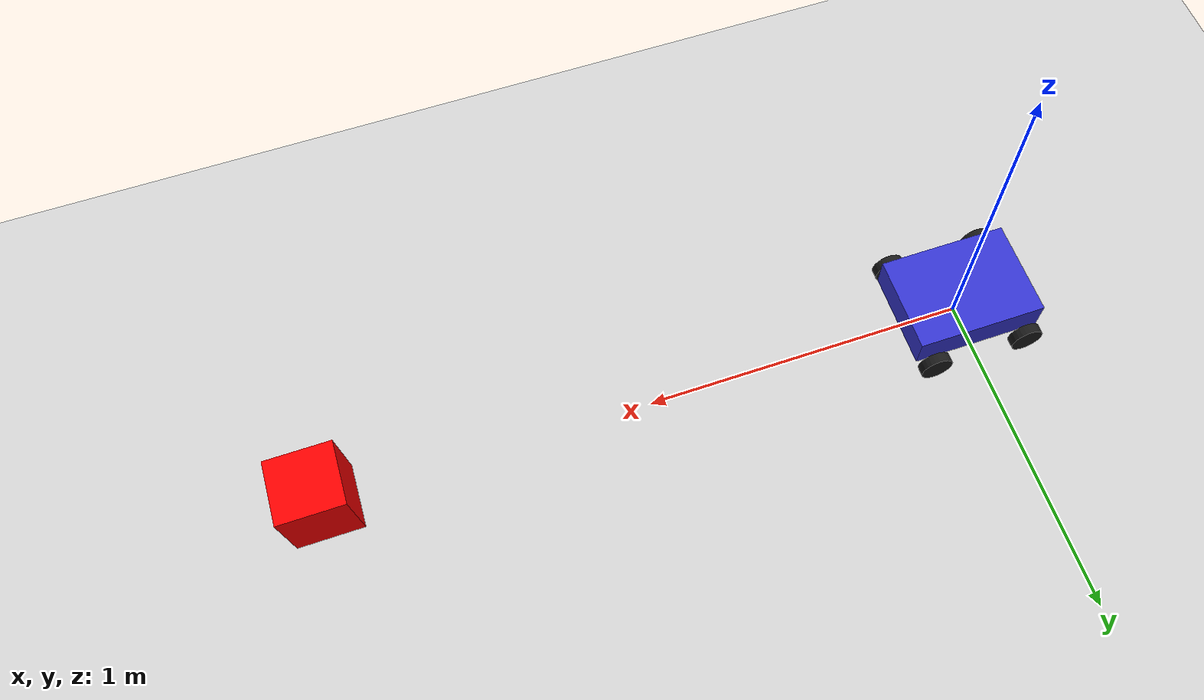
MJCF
<?xml version="1.0" ?>
<mujoco model="four_wheel_robot">
  <compiler angle="radian" coordinate="local"/>
  <default>
    <joint damping="0.1" frictionloss="0.1"/>
    <geom friction="1.0 0.1 0.1" density="1000"/>
  </default>
  <asset/>
  <worldbody>
    <geom name="ground" type="plane" size="10 10 0.1" rgba="0.8 0.8 0.8 1"/>
    <body name="obstacle" pos="2 0 0.1">
      <geom name="obstacle_geom" type="box" size="0.1 0.1 0.1" rgba="1 0 0 1"/>
    </body>
    <body name="robot" pos="0 0 0.1">
      <joint name="root_free" type="free"/>
      <geom name="base_link_visual" type="box" size="0.2 0.15 0.05" rgba="0.2 0.2 0.8 1.0"/>
      <body name="front_left_wheel" pos="0.15 0.18 -0.05">
        <geom name="front_left_wheel_visual" type="cylinder" size="0.05 0.015" rgba="0.1 0.1 0.1 1.0" quat="0.707 0.707 0 0"/>
        <joint name="front_left_wheel_joint" type="hinge" axis="0 1 0"/>
      </body>
      <body name="front_right_wheel" pos="0.15 -0.18 -0.05">
        <geom name="front_right_wheel_visual" type="cylinder" size="0.05 0.015" rgba="0.1 0.1 0.1 1.0" quat="0.707 0.707 0 0"/>
        <joint name="front_right_wheel_joint" type="hinge" axis="0 1 0"/>
      </body>
      <body name="rear_left_wheel" pos="-0.15 0.18 -0.05">
        <geom name="rear_left_wheel_visual" type="cylinder" size="0.05 0.015" rgba="0.1 0.1 0.1 1.0" quat="0.707 0.707 0 0"/>
        <joint name="rear_left_wheel_joint" type="hinge" axis="0 1 0"/>
      </body>
      <body name="rear_right_wheel" pos="-0.15 -0.18 -0.05">
        <geom name="rear_right_wheel_visual" type="cylinder" size="0.05 0.015" rgba="0.1 0.1 0.1 1.0" quat="0.707 0.707 0 0"/>
        <joint name="rear_right_wheel_joint" type="hinge" axis="0 1 0"/>
      </body>
    </body>
  </worldbody>
  <actuator>
    <motor name="front_left_wheel_joint_motor" joint="front_left_wheel_joint" gear="1"/>
    <motor name="front_right_wheel_joint_motor" joint="front_right_wheel_joint" gear="1"/>
    <motor name="rear_left_wheel_joint_motor" joint="rear_left_wheel_joint" gear="1"/>
    <motor name="rear_right_wheel_joint_motor" joint="rear_right_wheel_joint" gear="1"/>
  </actuator>
</mujoco>
